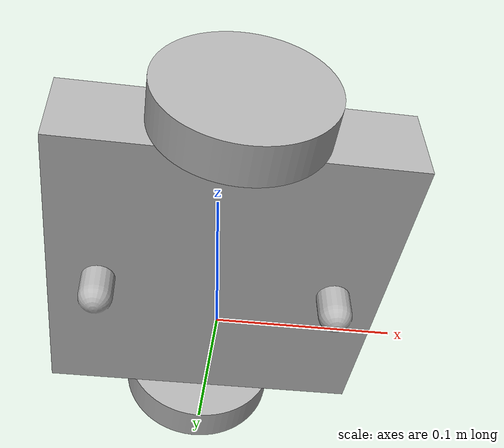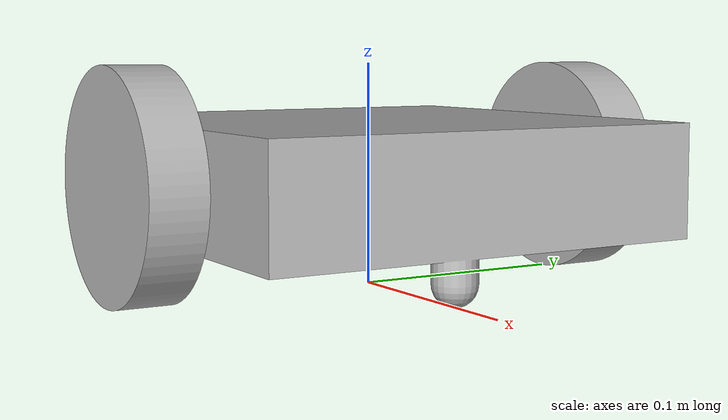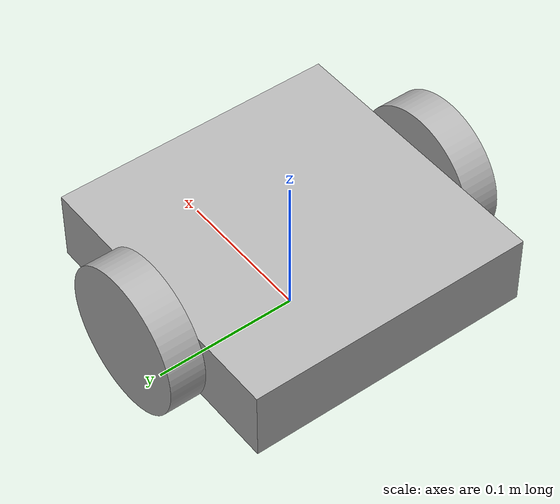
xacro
<?xml version="1.0" ?>
<robot name="two-wheeled-robot" xmlns:xacro="http://www.ros.org/wiki/xacro">

<xacro:include filename="$(find two-wheeled-robot_description)/urdf/materials.xacro" />
<xacro:include filename="$(find two-wheeled-robot_description)/urdf/two-wheeled-robot.trans" />
<xacro:include filename="$(find two-wheeled-robot_description)/urdf/two-wheeled-robot.gazebo" />
<link name="base_link">
  <inertial>
    <origin xyz="8.166246229178452e-15 0.0 0.049756872488880555" rpy="0 0 0"/>
    <mass value="2.1344303822554895"/>
    <inertia ixx="0.007528" iyy="0.007599" izz="0.014205" ixy="0.0" iyz="-0.0" ixz="0.0"/>
  </inertial>
  <visual>
    <origin xyz="0 0 0" rpy="0 0 0"/>
    <geometry>
      <mesh filename="package://two-wheeled-robot_description/meshes/base_link.stl" scale="0.001 0.001 0.001"/>
    </geometry>
    <material name="silver"/>
  </visual>
  <collision>
    <origin xyz="0 0 0" rpy="0 0 0"/>
    <geometry>
      <mesh filename="package://two-wheeled-robot_description/meshes/base_link.stl" scale="0.001 0.001 0.001"/>
    </geometry>
  </collision>
</link>

<link name="right_wheel_1">
  <inertial>
    <origin xyz="-5.790023100122029e-18 -0.012499999999999997 0.0" rpy="0 0 0"/>
    <mass value="0.1826050729899067"/>
    <inertia ixx="0.000124" iyy="0.000228" izz="0.000124" ixy="-0.0" iyz="0.0" ixz="0.0"/>
  </inertial>
  <visual>
    <origin xyz="-0.0 0.1 -0.05" rpy="0 0 0"/>
    <geometry>
      <mesh filename="package://two-wheeled-robot_description/meshes/right_wheel_1.stl" scale="0.001 0.001 0.001"/>
    </geometry>
    <material name="silver"/>
  </visual>
  <collision>
    <origin xyz="-0.0 0.1 -0.05" rpy="0 0 0"/>
    <geometry>
      <mesh filename="package://two-wheeled-robot_description/meshes/right_wheel_1.stl" scale="0.001 0.001 0.001"/>
    </geometry>
  </collision>
</link>

<link name="left_wheel_1">
  <inertial>
    <origin xyz="-5.790023100122029e-18 0.012499999999999997 0.0" rpy="0 0 0"/>
    <mass value="0.1826050729899067"/>
    <inertia ixx="0.000124" iyy="0.000228" izz="0.000124" ixy="0.0" iyz="-0.0" ixz="0.0"/>
  </inertial>
  <visual>
    <origin xyz="-0.0 -0.1 -0.05" rpy="0 0 0"/>
    <geometry>
      <mesh filename="package://two-wheeled-robot_description/meshes/left_wheel_1.stl" scale="0.001 0.001 0.001"/>
    </geometry>
    <material name="silver"/>
  </visual>
  <collision>
    <origin xyz="-0.0 -0.1 -0.05" rpy="0 0 0"/>
    <geometry>
      <mesh filename="package://two-wheeled-robot_description/meshes/left_wheel_1.stl" scale="0.001 0.001 0.001"/>
    </geometry>
  </collision>
</link>

<joint name="Rev1" type="continuous">
  <origin xyz="0.0 -0.1 0.05" rpy="0 0 0"/>
  <parent link="base_link"/>
  <child link="right_wheel_1"/>
  <axis xyz="0.0 1.0 0.0"/>
</joint>

<joint name="Rev2" type="continuous">
  <origin xyz="0.0 0.1 0.05" rpy="0 0 0"/>
  <parent link="base_link"/>
  <child link="left_wheel_1"/>
  <axis xyz="0.0 1.0 0.0"/>
</joint>

</robot>

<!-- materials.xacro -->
<robot name="two-wheeled-robot" xmlns:xacro="http://www.ros.org/wiki/xacro" >

<material name="silver">
  <color rgba="0.700 0.700 0.700 1.000"/>
</material>

</robot>

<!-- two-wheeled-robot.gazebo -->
<robot name="two-wheeled-robot" xmlns:xacro="http://www.ros.org/wiki/xacro" >

<xacro:property name="body_color" value="Gazebo/Silver" />
<xacro:property name="body_color1" value="Gazebo/Blue" />
<xacro:property name="body_color2" value="Gazebo/Green" />

<gazebo>
  <plugin name="differential_drive_controller" filename="libgazebo_ros_diff_drive.so">
    <alwaysOn>true</alwaysOn>
    <updateRate>20</updateRate>
    <legacyMode>false</legacyMode>
    <leftJoint>Rev2</leftJoint>
    <rightJoint>Rev1</rightJoint>
    <wheelSeparation>0.2</wheelSeparation>
    <wheelDiameter>0.1</wheelDiameter>
    <torque>20</torque>
    <commandTopic>cmd_vel</commandTopic>
    <odometryTopic>odom</odometryTopic>
    <odometryFrame>odom</odometryFrame>
    <robotBaseFrame>base_footprint</robotBaseFrame>
 </plugin>
</gazebo>

<gazebo reference="base_link">
  <material>${body_color1}</material>
  <mu1>0.2</mu1>
  <mu2>0.2</mu2>
  <selfCollide>true</selfCollide>
  <gravity>true</gravity>
</gazebo>

<gazebo reference="right_wheel_1">
  <material>${body_color2}</material>
  <mu1>2</mu1>
  <mu2>2</mu2>
  <selfCollide>true</selfCollide>
  <gravity>true</gravity>
</gazebo>

<gazebo reference="left_wheel_1">
  <material>${body_color2}</material>
  <mu1>2</mu1>
  <mu2>2</mu2>
  <selfCollide>true</selfCollide>
  <gravity>true</gravity>
</gazebo>

</robot>
